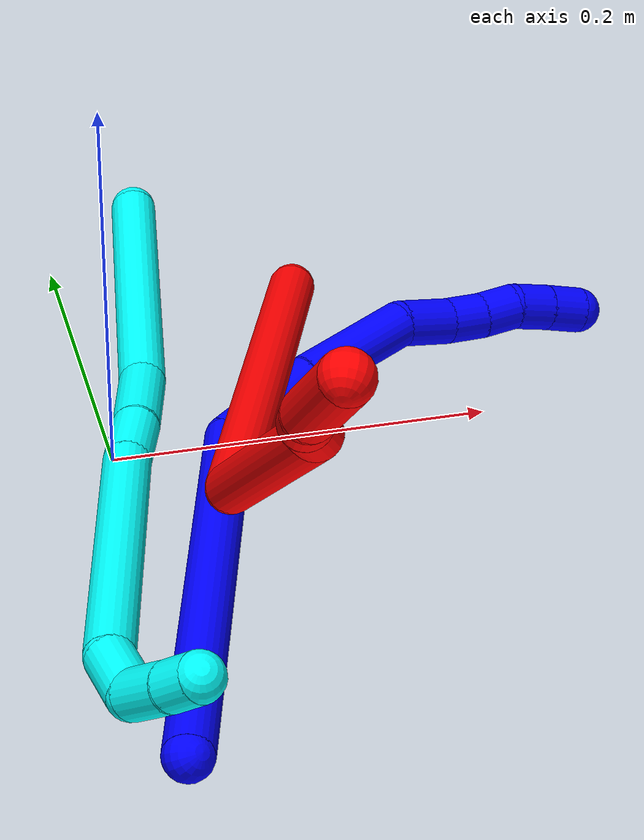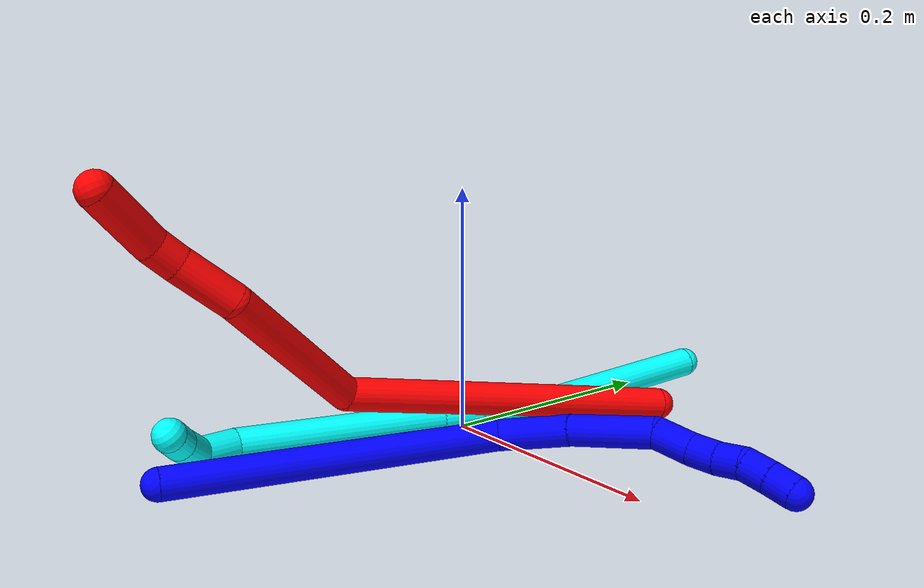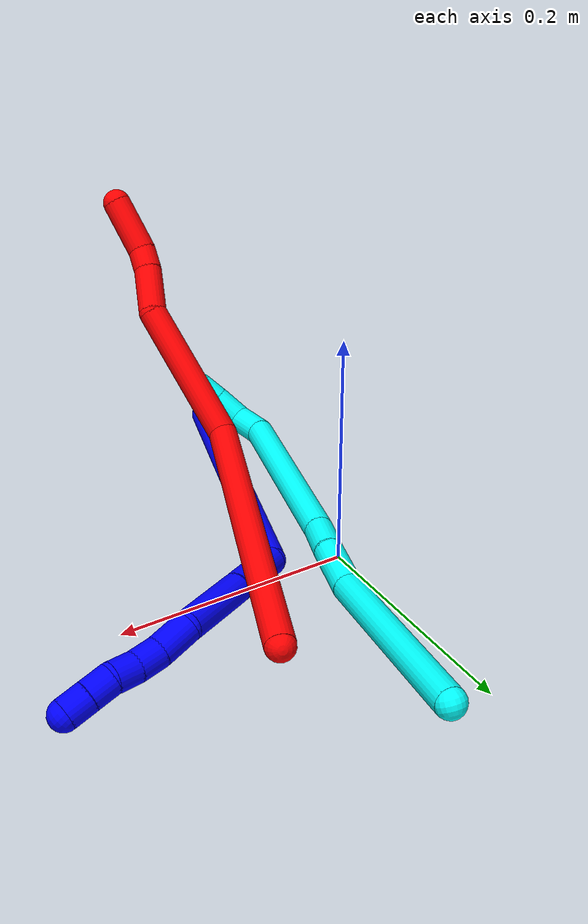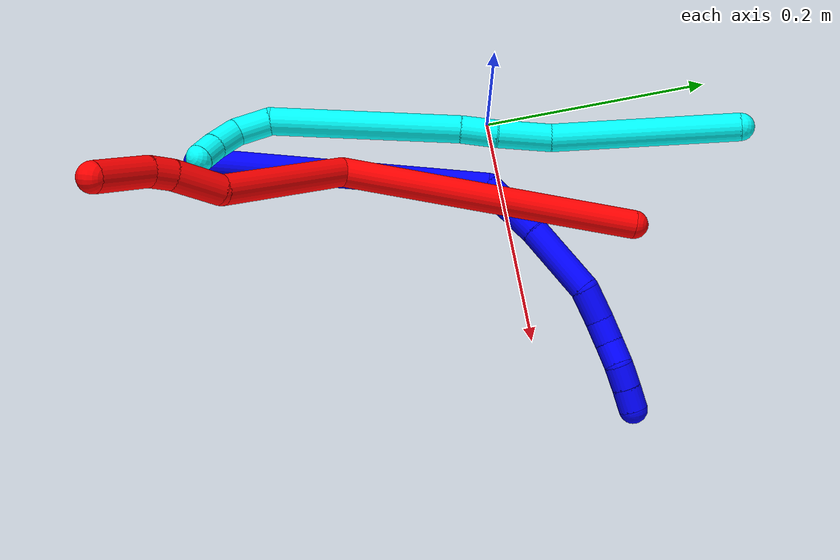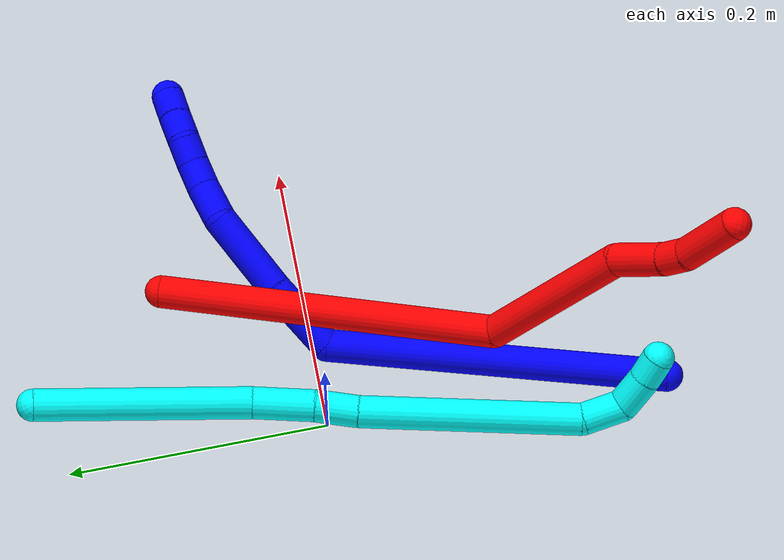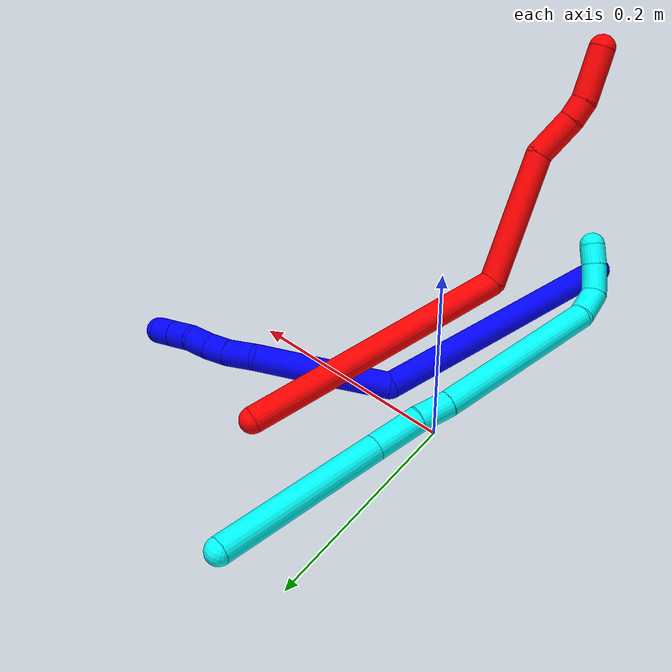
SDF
<sdf version="1.7">
 <world name="default">
  <plugin name="TubeGeneratorPlugin" filename="libtube_generator_plugin.so"/>
  <model name="photoneo_s_sensor">
   <static>1</static>
   <pose>0 0 2 1.57079 1.57079 3.14159</pose>
   <link name="link">
    <inertial><mass>0.1</mass></inertial>
    <sensor name="sensor" type="depth">
     <update_rate>30</update_rate>
     <camera>
      <horizontal_fov>1.22</horizontal_fov>
      <image><width>1920</width><height>1200</height><format>B8G8R8</format></image>
      <clip><near>0.1</near><far>4</far></clip>
      <depth_camera><output>points</output></depth_camera>
     </camera>
     <plugin name="camera_plugin" filename="libgazebo_ros_depth_camera.so">
      <baseline>0.2</baseline>
      <alwaysOn>1</alwaysOn>
      <updateRate>0.0</updateRate>
      <cameraName>camera_ir</cameraName>
      <imageTopicName>/camera/color/image_raw</imageTopicName>
      <cameraInfoTopicName>/camera/color/camera_info</cameraInfoTopicName>
      <depthImageTopicName>/camera/depth/image_raw</depthImageTopicName>
      <depthImageCameraInfoTopicName>/camera/depth/camera_info</depthImageCameraInfoTopicName>
      <pointCloudTopicName>/camera/depth/points</pointCloudTopicName>
      <frameName>fr_optical</frameName>
      <pointCloudCutoff>0.1</pointCloudCutoff>
      <pointCloudCutoffMax>2.0</pointCloudCutoffMax>
      <distortionK1>0</distortionK1>
      <distortionK2>0</distortionK2>
      <distortionK3>0</distortionK3>
      <distortionT1>0</distortionT1>
      <distortionT2>0</distortionT2>
      <CxPrime>0</CxPrime>
      <Cx>0</Cx>
      <Cy>0</Cy>
      <focalLength>0</focalLength>
      <hackBaseline>0</hackBaseline>
     </plugin>
    </sensor>
   </link>
  </model>
  <gravity>0 0 -9.8</gravity>
  <magnetic_field>6e-06 2.3e-05 -4.2e-05</magnetic_field>
  <atmosphere type="adiabatic"/>
  <physics name="default_physics" default="0" type="ode">
   <max_step_size>0.003</max_step_size>
   <real_time_factor>1</real_time_factor>
   <real_time_update_rate>1000</real_time_update_rate>
   <max_contacts>10000</max_contacts>
   <ode>
    <solver>
     <type>quick</type>
     <iters>100</iters>
     <sor>1.3</sor>
     <use_dynamic_moi_rescaling>0</use_dynamic_moi_rescaling>
    </solver>
    <constraints>
     <contact_max_correcting_vel>0</contact_max_correcting_vel>
     <contact_surface_layer>0.001</contact_surface_layer>
     <cfm>0</cfm>
     <erp>0.2</erp>
    </constraints>
   </ode>
  </physics>
  <scene><ambient>0.4 0.4 0.4 1</ambient><background>0.7 0.7 0.7 1</background><shadows>0</shadows></scene>
  <audio><device>default</device></audio>
  <spherical_coordinates>
   <surface_model>EARTH_WGS84</surface_model>
   <latitude_deg>0</latitude_deg>
   <longitude_deg>0</longitude_deg>
   <elevation>0</elevation>
   <heading_deg>0</heading_deg>
  </spherical_coordinates>
  <model name="bin">
   <static>1</static>
   <link name="bottom">
    <collision name="collision-bottom">
     <pose>0 0 -0.01 0 -0 0</pose>
     <geometry><box><size>0.8 0.6 0.02</size></box></geometry>
     <surface>
      <friction><ode><mu>100</mu><mu2>100</mu2></ode></friction>
      <contact><collide_bitmask>65535</collide_bitmask></contact>
     </surface>
    </collision>
   </link>
   <link name="west_wall">
    <collision name="collision-west_wall">
     <pose>-0.41 0 0.1 0 -0 0</pose>
     <geometry><box><size>0.02 0.6 0.2</size></box></geometry>
     <surface>
      <friction><ode><mu>100</mu><mu2>100</mu2></ode></friction>
      <contact><collide_bitmask>65535</collide_bitmask></contact>
     </surface>
    </collision>
   </link>
   <link name="east_wall">
    <collision name="collision-east_wall">
     <pose>0.41 0 0.1 0 -0 0</pose>
     <geometry><box><size>0.02 0.6 0.2</size></box></geometry>
     <surface>
      <friction><ode><mu>100</mu><mu2>100</mu2></ode></friction>
      <contact><collide_bitmask>65535</collide_bitmask></contact>
     </surface>
    </collision>
   </link>
   <link name="south_wall">
    <collision name="collision-south_wall">
     <pose>0 -0.31 0.1 0 -0 0</pose>
     <geometry><box><size>0.8 0.02 0.2</size></box></geometry>
     <surface>
      <friction><ode><mu>100</mu><mu2>100</mu2></ode></friction>
      <contact><collide_bitmask>65535</collide_bitmask></contact>
     </surface>
    </collision>
   </link>
   <link name="north_wall">
    <collision name="collision-north_wall">
     <pose>0 0.31 0.1 0 -0 0</pose>
     <geometry><box><size>0.8 0.02 0.2</size></box></geometry>
     <surface>
      <friction><ode><mu>100</mu><mu2>100</mu2></ode></friction>
      <contact><collide_bitmask>65535</collide_bitmask></contact>
     </surface>
    </collision>
   </link>
  </model>
  <model name="1">
   <static>0</static>
   <link name="1">
    <collision name="collision-cylinder-e_1_1_4">
     <pose>0.056398 0.094501 -0.069531 -2.20513 0.448091 -0.846653</pose>
     <geometry><cylinder><radius>0.0125</radius><length>0.260352</length></cylinder></geometry>
     <surface>
      <friction><ode><mu>1.16</mu><mu2>1.16</mu2><slip1>0</slip1><slip2>0</slip2></ode></friction>
      <contact><ode><kp>1e+06</kp><kd>1</kd><max_vel>0</max_vel><min_depth>0.001</min_depth></ode></contact>
     </surface>
    </collision>
    <visual name="visual-cylinder-e_1_1_4">
     <pose>0.056398 0.094501 -0.069531 -2.20513 0.448091 -0.846653</pose>
     <geometry><cylinder><radius>0.0125</radius><length>0.260352</length></cylinder></geometry>
     <material><ambient>0 0 1 1</ambient></material>
    </visual>
    <collision name="collision-cylinder-e_2_4_5">
     <pose>0.135926 0.207656 -0.135949 -1.40542 0.885354 -0.763584</pose>
     <geometry><cylinder><radius>0.0125</radius><length>0.059755</length></cylinder></geometry>
     <surface>
      <friction><ode><mu>1.16</mu><mu2>1.16</mu2><slip1>0</slip1><slip2>0</slip2></ode></friction>
      <contact><ode><kp>1e+06</kp><kd>1</kd><max_vel>0</max_vel><min_depth>0.001</min_depth></ode></contact>
     </surface>
    </collision>
    <visual name="visual-cylinder-e_2_4_5">
     <pose>0.135926 0.207656 -0.135949 -1.40542 0.885354 -0.763584</pose>
     <geometry><cylinder><radius>0.0125</radius><length>0.059755</length></cylinder></geometry>
     <material><ambient>0 0 1 1</ambient></material>
    </visual>
    <collision name="collision-cylinder-e_3_5_6">
     <pose>0.187062 0.244262 -0.128968 -1.35857 0.990458 -0.822533</pose>
     <geometry><cylinder><radius>0.0125</radius><length>0.066982</length></cylinder></geometry>
     <surface>
      <friction><ode><mu>1.16</mu><mu2>1.16</mu2><slip1>0</slip1><slip2>0</slip2></ode></friction>
      <contact><ode><kp>1e+06</kp><kd>1</kd><max_vel>0</max_vel><min_depth>0.001</min_depth></ode></contact>
     </surface>
    </collision>
    <visual name="visual-cylinder-e_3_5_6">
     <pose>0.187062 0.244262 -0.128968 -1.35857 0.990458 -0.822533</pose>
     <geometry><cylinder><radius>0.0125</radius><length>0.066982</length></cylinder></geometry>
     <material><ambient>0 0 1 1</ambient></material>
    </visual>
    <collision name="collision-cylinder-e_4_6_7">
     <pose>0.229752 0.264742 -0.123983 -1.15497 1.38471 -0.990817</pose>
     <geometry><cylinder><radius>0.0125</radius><length>0.029879</length></cylinder></geometry>
     <surface>
      <friction><ode><mu>1.16</mu><mu2>1.16</mu2><slip1>0</slip1><slip2>0</slip2></ode></friction>
      <contact><ode><kp>1e+06</kp><kd>1</kd><max_vel>0</max_vel><min_depth>0.001</min_depth></ode></contact>
     </surface>
    </collision>
    <visual name="visual-cylinder-e_4_6_7">
     <pose>0.229752 0.264742 -0.123983 -1.15497 1.38471 -0.990817</pose>
     <geometry><cylinder><radius>0.0125</radius><length>0.029879</length></cylinder></geometry>
     <material><ambient>0 0 1 1</ambient></material>
    </visual>
    <collision name="collision-cylinder-e_5_7_8">
     <pose>0.254665 0.26975 -0.120633 -0.837472 1.25545 -0.624755</pose>
     <geometry><cylinder><radius>0.0125</radius><length>0.021524</length></cylinder></geometry>
     <surface>
      <friction><ode><mu>1.16</mu><mu2>1.16</mu2><slip1>0</slip1><slip2>0</slip2></ode></friction>
      <contact><ode><kp>1e+06</kp><kd>1</kd><max_vel>0</max_vel><min_depth>0.001</min_depth></ode></contact>
     </surface>
    </collision>
    <visual name="visual-cylinder-e_5_7_8">
     <pose>0.254665 0.26975 -0.120633 -0.837472 1.25545 -0.624755</pose>
     <geometry><cylinder><radius>0.0125</radius><length>0.021524</length></cylinder></geometry>
     <material><ambient>0 0 1 1</ambient></material>
    </visual>
    <collision name="collision-cylinder-e_6_8_9">
     <pose>0.274023 0.275443 -0.115119 -0.77511 1.10473 -0.492968</pose>
     <geometry><cylinder><radius>0.0125</radius><length>0.020433</length></cylinder></geometry>
     <surface>
      <friction><ode><mu>1.16</mu><mu2>1.16</mu2><slip1>0</slip1><slip2>0</slip2></ode></friction>
      <contact><ode><kp>1e+06</kp><kd>1</kd><max_vel>0</max_vel><min_depth>0.001</min_depth></ode></contact>
     </surface>
    </collision>
    <visual name="visual-cylinder-e_6_8_9">
     <pose>0.274023 0.275443 -0.115119 -0.77511 1.10473 -0.492968</pose>
     <geometry><cylinder><radius>0.0125</radius><length>0.020433</length></cylinder></geometry>
     <material><ambient>0 0 1 1</ambient></material>
    </visual>
    <collision name="collision-cylinder-e_7_9_10">
     <pose>0.293365 0.279465 -0.110409 -0.515024 1.41134 -0.441466</pose>
     <geometry><cylinder><radius>0.0125</radius><length>0.020694</length></cylinder></geometry>
     <surface>
      <friction><ode><mu>1.16</mu><mu2>1.16</mu2><slip1>0</slip1><slip2>0</slip2></ode></friction>
      <contact><ode><kp>1e+06</kp><kd>1</kd><max_vel>0</max_vel><min_depth>0.001</min_depth></ode></contact>
     </surface>
    </collision>
    <visual name="visual-cylinder-e_7_9_10">
     <pose>0.293365 0.279465 -0.110409 -0.515024 1.41134 -0.441466</pose>
     <geometry><cylinder><radius>0.0125</radius><length>0.020694</length></cylinder></geometry>
     <material><ambient>0 0 1 1</ambient></material>
    </visual>
    <collision name="collision-cylinder-e_8_10_2">
     <pose>0.31367 0.280664 -0.107594 -0.274119 1.42904 -0.238144</pose>
     <geometry><cylinder><radius>0.0125</radius><length>0.020382</length></cylinder></geometry>
     <surface>
      <friction><ode><mu>1.16</mu><mu2>1.16</mu2><slip1>0</slip1><slip2>0</slip2></ode></friction>
      <contact><ode><kp>1e+06</kp><kd>1</kd><max_vel>0</max_vel><min_depth>0.001</min_depth></ode></contact>
     </surface>
    </collision>
    <visual name="visual-cylinder-e_8_10_2">
     <pose>0.31367 0.280664 -0.107594 -0.274119 1.42904 -0.238144</pose>
     <geometry><cylinder><radius>0.0125</radius><length>0.020382</length></cylinder></geometry>
     <material><ambient>0 0 1 1</ambient></material>
    </visual>
    <collision name="collision-sphere-2">
     <pose>0.323759 0.281054 -0.106208 0 -0 0</pose>
     <geometry><sphere><radius>0.0125</radius></sphere></geometry>
     <surface>
      <friction><ode><mu>1.16</mu><mu2>1.16</mu2><slip1>0</slip1><slip2>0</slip2></ode></friction>
      <contact><ode><kp>1e+06</kp><kd>1</kd><max_vel>0</max_vel><min_depth>0.001</min_depth></ode></contact>
     </surface>
    </collision>
    <visual name="visual-sphere-2">
     <pose>0.323759 0.281054 -0.106208 0 -0 0</pose>
     <geometry><sphere><radius>0.0125</radius></sphere></geometry>
     <material><ambient>0 0 1 1</ambient></material>
    </visual>
    <collision name="collision-sphere-10">
     <pose>0.303581 0.280274 -0.10898 0 -0 0</pose>
     <geometry><sphere><radius>0.0125</radius></sphere></geometry>
     <surface>
      <friction><ode><mu>1.16</mu><mu2>1.16</mu2><slip1>0</slip1><slip2>0</slip2></ode></friction>
      <contact><ode><kp>1e+06</kp><kd>1</kd><max_vel>0</max_vel><min_depth>0.001</min_depth></ode></contact>
     </surface>
    </collision>
    <visual name="visual-sphere-10">
     <pose>0.303581 0.280274 -0.10898 0 -0 0</pose>
     <geometry><sphere><radius>0.0125</radius></sphere></geometry>
     <material><ambient>0 0 1 1</ambient></material>
    </visual>
    <collision name="collision-sphere-9">
     <pose>0.28315 0.278656 -0.111839 0 -0 0</pose>
     <geometry><sphere><radius>0.0125</radius></sphere></geometry>
     <surface>
      <friction><ode><mu>1.16</mu><mu2>1.16</mu2><slip1>0</slip1><slip2>0</slip2></ode></friction>
      <contact><ode><kp>1e+06</kp><kd>1</kd><max_vel>0</max_vel><min_depth>0.001</min_depth></ode></contact>
     </surface>
    </collision>
    <visual name="visual-sphere-9">
     <pose>0.28315 0.278656 -0.111839 0 -0 0</pose>
     <geometry><sphere><radius>0.0125</radius></sphere></geometry>
     <material><ambient>0 0 1 1</ambient></material>
    </visual>
    <collision name="collision-sphere-4">
     <pose>0.112796 0.189001 -0.139063 0 -0 0</pose>
     <geometry><sphere><radius>0.0125</radius></sphere></geometry>
     <surface>
      <friction><ode><mu>1.16</mu><mu2>1.16</mu2><slip1>0</slip1><slip2>0</slip2></ode></friction>
      <contact><ode><kp>1e+06</kp><kd>1</kd><max_vel>0</max_vel><min_depth>0.001</min_depth></ode></contact>
     </surface>
    </collision>
    <visual name="visual-sphere-4">
     <pose>0.112796 0.189001 -0.139063 0 -0 0</pose>
     <geometry><sphere><radius>0.0125</radius></sphere></geometry>
     <material><ambient>0 0 1 1</ambient></material>
    </visual>
    <collision name="collision-sphere-1">
     <geometry><sphere><radius>0.0125</radius></sphere></geometry>
     <surface>
      <friction><ode><mu>1.16</mu><mu2>1.16</mu2><slip1>0</slip1><slip2>0</slip2></ode></friction>
      <contact><ode><kp>1e+06</kp><kd>1</kd><max_vel>0</max_vel><min_depth>0.001</min_depth></ode></contact>
     </surface>
    </collision>
    <visual name="visual-sphere-1">
     <geometry><sphere><radius>0.0125</radius></sphere></geometry>
     <material><ambient>0 0 1 1</ambient></material>
    </visual>
    <collision name="collision-sphere-8">
     <pose>0.264896 0.27223 -0.118398 0 -0 0</pose>
     <geometry><sphere><radius>0.0125</radius></sphere></geometry>
     <surface>
      <friction><ode><mu>1.16</mu><mu2>1.16</mu2><slip1>0</slip1><slip2>0</slip2></ode></friction>
      <contact><ode><kp>1e+06</kp><kd>1</kd><max_vel>0</max_vel><min_depth>0.001</min_depth></ode></contact>
     </surface>
    </collision>
    <visual name="visual-sphere-8">
     <pose>0.264896 0.27223 -0.118398 0 -0 0</pose>
     <geometry><sphere><radius>0.0125</radius></sphere></geometry>
     <material><ambient>0 0 1 1</ambient></material>
    </visual>
    <collision name="collision-sphere-5">
     <pose>0.159055 0.226311 -0.132836 0 -0 0</pose>
     <geometry><sphere><radius>0.0125</radius></sphere></geometry>
     <surface>
      <friction><ode><mu>1.16</mu><mu2>1.16</mu2><slip1>0</slip1><slip2>0</slip2></ode></friction>
      <contact><ode><kp>1e+06</kp><kd>1</kd><max_vel>0</max_vel><min_depth>0.001</min_depth></ode></contact>
     </surface>
    </collision>
    <visual name="visual-sphere-5">
     <pose>0.159055 0.226311 -0.132836 0 -0 0</pose>
     <geometry><sphere><radius>0.0125</radius></sphere></geometry>
     <material><ambient>0 0 1 1</ambient></material>
    </visual>
    <collision name="collision-sphere-6">
     <pose>0.21507 0.262213 -0.1251 0 -0 0</pose>
     <geometry><sphere><radius>0.0125</radius></sphere></geometry>
     <surface>
      <friction><ode><mu>1.16</mu><mu2>1.16</mu2><slip1>0</slip1><slip2>0</slip2></ode></friction>
      <contact><ode><kp>1e+06</kp><kd>1</kd><max_vel>0</max_vel><min_depth>0.001</min_depth></ode></contact>
     </surface>
    </collision>
    <visual name="visual-sphere-6">
     <pose>0.21507 0.262213 -0.1251 0 -0 0</pose>
     <geometry><sphere><radius>0.0125</radius></sphere></geometry>
     <material><ambient>0 0 1 1</ambient></material>
    </visual>
    <collision name="collision-sphere-7">
     <pose>0.244433 0.26727 -0.122867 0 -0 0</pose>
     <geometry><sphere><radius>0.0125</radius></sphere></geometry>
     <surface>
      <friction><ode><mu>1.16</mu><mu2>1.16</mu2><slip1>0</slip1><slip2>0</slip2></ode></friction>
      <contact><ode><kp>1e+06</kp><kd>1</kd><max_vel>0</max_vel><min_depth>0.001</min_depth></ode></contact>
     </surface>
    </collision>
    <visual name="visual-sphere-7">
     <pose>0.244433 0.26727 -0.122867 0 -0 0</pose>
     <geometry><sphere><radius>0.0125</radius></sphere></geometry>
     <material><ambient>0 0 1 1</ambient></material>
    </visual>
    <inertial>
     <pose>0.131489 0.168442 -0.095991 0 -0 0</pose>
     <mass>0.5</mass>
     <inertia>
      <ixx>-9e-05</ixx>
      <ixy>0</ixy>
      <ixz>0</ixz>
      <iyy>-0.00115</iyy>
      <iyz>0</iyz>
      <izz>-0.001802</izz>
     </inertia>
    </inertial>
   </link>
   <pose>-0.01283 -0.261275 0.011499 0.842156 0.405457 0.210361</pose>
  </model>
  <model name="2">
   <static>0</static>
   <link name="2">
    <collision name="collision-cylinder-e_1_1_4">
     <pose>0.024209 -0.05861 0.11213 0.48164 0.189058 0.04656</pose>
     <geometry><cylinder><radius>0.0125</radius><length>0.257639</length></cylinder></geometry>
     <surface>
      <friction><ode><mu>1.16</mu><mu2>1.16</mu2><slip1>0</slip1><slip2>0</slip2></ode></friction>
      <contact><ode><kp>1e+06</kp><kd>1</kd><max_vel>0</max_vel><min_depth>0.001</min_depth></ode></contact>
     </surface>
    </collision>
    <visual name="visual-cylinder-e_1_1_4">
     <pose>0.024209 -0.05861 0.11213 0.48164 0.189058 0.04656</pose>
     <geometry><cylinder><radius>0.0125</radius><length>0.257639</length></cylinder></geometry>
     <material><ambient>1 0 0 1</ambient></material>
    </visual>
    <collision name="collision-cylinder-e_2_4_5">
     <pose>0.048841 -0.177219 0.245796 1.22618 0.006621 0.004658</pose>
     <geometry><cylinder><radius>0.0125</radius><length>0.127495</length></cylinder></geometry>
     <surface>
      <friction><ode><mu>1.16</mu><mu2>1.16</mu2><slip1>0</slip1><slip2>0</slip2></ode></friction>
      <contact><ode><kp>1e+06</kp><kd>1</kd><max_vel>0</max_vel><min_depth>0.001</min_depth></ode></contact>
     </surface>
    </collision>
    <visual name="visual-cylinder-e_2_4_5">
     <pose>0.048841 -0.177219 0.245796 1.22618 0.006621 0.004658</pose>
     <geometry><cylinder><radius>0.0125</radius><length>0.127495</length></cylinder></geometry>
     <material><ambient>1 0 0 1</ambient></material>
    </visual>
    <collision name="collision-cylinder-e_3_5_6">
     <pose>0.057289 -0.254279 0.278177 1.00458 0.377914 0.209318</pose>
     <geometry><cylinder><radius>0.0125</radius><length>0.043504</length></cylinder></geometry>
     <surface>
      <friction><ode><mu>1.16</mu><mu2>1.16</mu2><slip1>0</slip1><slip2>0</slip2></ode></friction>
      <contact><ode><kp>1e+06</kp><kd>1</kd><max_vel>0</max_vel><min_depth>0.001</min_depth></ode></contact>
     </surface>
    </collision>
    <visual name="visual-cylinder-e_3_5_6">
     <pose>0.057289 -0.254279 0.278177 1.00458 0.377914 0.209318</pose>
     <geometry><cylinder><radius>0.0125</radius><length>0.043504</length></cylinder></geometry>
     <material><ambient>1 0 0 1</ambient></material>
    </visual>
    <collision name="collision-cylinder-e_4_6_7">
     <pose>0.067689 -0.280259 0.293517 1.10395 0.233374 0.144125</pose>
     <geometry><cylinder><radius>0.0125</radius><length>0.02053</length></cylinder></geometry>
     <surface>
      <friction><ode><mu>1.16</mu><mu2>1.16</mu2><slip1>0</slip1><slip2>0</slip2></ode></friction>
      <contact><ode><kp>1e+06</kp><kd>1</kd><max_vel>0</max_vel><min_depth>0.001</min_depth></ode></contact>
     </surface>
    </collision>
    <visual name="visual-cylinder-e_4_6_7">
     <pose>0.067689 -0.280259 0.293517 1.10395 0.233374 0.144125</pose>
     <geometry><cylinder><radius>0.0125</radius><length>0.02053</length></cylinder></geometry>
     <material><ambient>1 0 0 1</ambient></material>
    </visual>
    <collision name="collision-cylinder-e_5_7_2">
     <pose>0.0712 -0.313637 0.304824 1.29918 0.044758 0.033998</pose>
     <geometry><cylinder><radius>0.0125</radius><length>0.050832</length></cylinder></geometry>
     <surface>
      <friction><ode><mu>1.16</mu><mu2>1.16</mu2><slip1>0</slip1><slip2>0</slip2></ode></friction>
      <contact><ode><kp>1e+06</kp><kd>1</kd><max_vel>0</max_vel><min_depth>0.001</min_depth></ode></contact>
     </surface>
    </collision>
    <visual name="visual-cylinder-e_5_7_2">
     <pose>0.0712 -0.313637 0.304824 1.29918 0.044758 0.033998</pose>
     <geometry><cylinder><radius>0.0125</radius><length>0.050832</length></cylinder></geometry>
     <material><ambient>1 0 0 1</ambient></material>
    </visual>
    <collision name="collision-sphere-2">
     <pose>0.072337 -0.338096 0.311636 0 -0 0</pose>
     <geometry><sphere><radius>0.0125</radius></sphere></geometry>
     <surface>
      <friction><ode><mu>1.16</mu><mu2>1.16</mu2><slip1>0</slip1><slip2>0</slip2></ode></friction>
      <contact><ode><kp>1e+06</kp><kd>1</kd><max_vel>0</max_vel><min_depth>0.001</min_depth></ode></contact>
     </surface>
    </collision>
    <visual name="visual-sphere-2">
     <pose>0.072337 -0.338096 0.311636 0 -0 0</pose>
     <geometry><sphere><radius>0.0125</radius></sphere></geometry>
     <material><ambient>1 0 0 1</ambient></material>
    </visual>
    <collision name="collision-sphere-7">
     <pose>0.070063 -0.289177 0.298012 0 -0 0</pose>
     <geometry><sphere><radius>0.0125</radius></sphere></geometry>
     <surface>
      <friction><ode><mu>1.16</mu><mu2>1.16</mu2><slip1>0</slip1><slip2>0</slip2></ode></friction>
      <contact><ode><kp>1e+06</kp><kd>1</kd><max_vel>0</max_vel><min_depth>0.001</min_depth></ode></contact>
     </surface>
    </collision>
    <visual name="visual-sphere-7">
     <pose>0.070063 -0.289177 0.298012 0 -0 0</pose>
     <geometry><sphere><radius>0.0125</radius></sphere></geometry>
     <material><ambient>1 0 0 1</ambient></material>
    </visual>
    <collision name="collision-sphere-6">
     <pose>0.065315 -0.271341 0.289022 0 -0 0</pose>
     <geometry><sphere><radius>0.0125</radius></sphere></geometry>
     <surface>
      <friction><ode><mu>1.16</mu><mu2>1.16</mu2><slip1>0</slip1><slip2>0</slip2></ode></friction>
      <contact><ode><kp>1e+06</kp><kd>1</kd><max_vel>0</max_vel><min_depth>0.001</min_depth></ode></contact>
     </surface>
    </collision>
    <visual name="visual-sphere-6">
     <pose>0.065315 -0.271341 0.289022 0 -0 0</pose>
     <geometry><sphere><radius>0.0125</radius></sphere></geometry>
     <material><ambient>1 0 0 1</ambient></material>
    </visual>
    <collision name="collision-sphere-5">
     <pose>0.049263 -0.237217 0.267331 0 -0 0</pose>
     <geometry><sphere><radius>0.0125</radius></sphere></geometry>
     <surface>
      <friction><ode><mu>1.16</mu><mu2>1.16</mu2><slip1>0</slip1><slip2>0</slip2></ode></friction>
      <contact><ode><kp>1e+06</kp><kd>1</kd><max_vel>0</max_vel><min_depth>0.001</min_depth></ode></contact>
     </surface>
    </collision>
    <visual name="visual-sphere-5">
     <pose>0.049263 -0.237217 0.267331 0 -0 0</pose>
     <geometry><sphere><radius>0.0125</radius></sphere></geometry>
     <material><ambient>1 0 0 1</ambient></material>
    </visual>
    <collision name="collision-sphere-1">
     <geometry><sphere><radius>0.0125</radius></sphere></geometry>
     <surface>
      <friction><ode><mu>1.16</mu><mu2>1.16</mu2><slip1>0</slip1><slip2>0</slip2></ode></friction>
      <contact><ode><kp>1e+06</kp><kd>1</kd><max_vel>0</max_vel><min_depth>0.001</min_depth></ode></contact>
     </surface>
    </collision>
    <visual name="visual-sphere-1">
     <geometry><sphere><radius>0.0125</radius></sphere></geometry>
     <material><ambient>1 0 0 1</ambient></material>
    </visual>
    <collision name="collision-sphere-4">
     <pose>0.048419 -0.11722 0.22426 0 -0 0</pose>
     <geometry><sphere><radius>0.0125</radius></sphere></geometry>
     <surface>
      <friction><ode><mu>1.16</mu><mu2>1.16</mu2><slip1>0</slip1><slip2>0</slip2></ode></friction>
      <contact><ode><kp>1e+06</kp><kd>1</kd><max_vel>0</max_vel><min_depth>0.001</min_depth></ode></contact>
     </surface>
    </collision>
    <visual name="visual-sphere-4">
     <pose>0.048419 -0.11722 0.22426 0 -0 0</pose>
     <geometry><sphere><radius>0.0125</radius></sphere></geometry>
     <material><ambient>1 0 0 1</ambient></material>
    </visual>
    <inertial>
     <pose>0.039931 -0.140907 0.187699 0 -0 0</pose>
     <mass>0.5</mass>
     <inertia>
      <ixx>0.001682</ixx>
      <ixy>0</ixy>
      <ixz>0</ixz>
      <iyy>0.001388</iyy>
      <iyz>0</iyz>
      <izz>0.00059</izz>
     </inertia>
    </inertial>
   </link>
   <pose>0.12051 0.105439 0.029363 -1.9851 -0.410753 2.94608</pose>
  </model>
  <model name="3">
   <static>0</static>
   <link name="3">
    <collision name="collision-cylinder-e_1_1_4">
     <pose>-0.005333 -0.074121 -0.038051 2.04508 -0.063919 -0.104604</pose>
     <geometry><cylinder><radius>0.0125</radius><length>0.166975</length></cylinder></geometry>
     <surface>
      <friction><ode><mu>1.16</mu><mu2>1.16</mu2><slip1>0</slip1><slip2>0</slip2></ode></friction>
      <contact><ode><kp>1e+06</kp><kd>1</kd><max_vel>0</max_vel><min_depth>0.001</min_depth></ode></contact>
     </surface>
    </collision>
    <visual name="visual-cylinder-e_1_1_4">
     <pose>-0.005333 -0.074121 -0.038051 2.04508 -0.063919 -0.104604</pose>
     <geometry><cylinder><radius>0.0125</radius><length>0.166975</length></cylinder></geometry>
     <material><ambient>0.003922 1 0.996078 1</ambient></material>
    </visual>
    <collision name="collision-cylinder-e_2_4_5">
     <pose>-0.009588 -0.167799 -0.090163 2.1941 0.044689 0.087126</pose>
     <geometry><cylinder><radius>0.0125</radius><length>0.048224</length></cylinder></geometry>
     <surface>
      <friction><ode><mu>1.16</mu><mu2>1.16</mu2><slip1>0</slip1><slip2>0</slip2></ode></friction>
      <contact><ode><kp>1e+06</kp><kd>1</kd><max_vel>0</max_vel><min_depth>0.001</min_depth></ode></contact>
     </surface>
    </collision>
    <visual name="visual-cylinder-e_2_4_5">
     <pose>-0.009588 -0.167799 -0.090163 2.1941 0.044689 0.087126</pose>
     <geometry><cylinder><radius>0.0125</radius><length>0.048224</length></cylinder></geometry>
     <material><ambient>0.003922 1 0.996078 1</ambient></material>
    </visual>
    <collision name="collision-cylinder-e_3_5_6">
     <pose>-0.006697 -0.201459 -0.112656 2.10976 0.109995 0.193533</pose>
     <geometry><cylinder><radius>0.0125</radius><length>0.033061</length></cylinder></geometry>
     <surface>
      <friction><ode><mu>1.16</mu><mu2>1.16</mu2><slip1>0</slip1><slip2>0</slip2></ode></friction>
      <contact><ode><kp>1e+06</kp><kd>1</kd><max_vel>0</max_vel><min_depth>0.001</min_depth></ode></contact>
     </surface>
    </collision>
    <visual name="visual-cylinder-e_3_5_6">
     <pose>-0.006697 -0.201459 -0.112656 2.10976 0.109995 0.193533</pose>
     <geometry><cylinder><radius>0.0125</radius><length>0.033061</length></cylinder></geometry>
     <material><ambient>0.003922 1 0.996078 1</ambient></material>
    </visual>
    <collision name="collision-cylinder-e_4_6_7">
     <pose>-0.003223 -0.286321 -0.168348 2.15963 0.019497 0.036464</pose>
     <geometry><cylinder><radius>0.0125</radius><length>0.170215</length></cylinder></geometry>
     <surface>
      <friction><ode><mu>1.16</mu><mu2>1.16</mu2><slip1>0</slip1><slip2>0</slip2></ode></friction>
      <contact><ode><kp>1e+06</kp><kd>1</kd><max_vel>0</max_vel><min_depth>0.001</min_depth></ode></contact>
     </surface>
    </collision>
    <visual name="visual-cylinder-e_4_6_7">
     <pose>-0.003223 -0.286321 -0.168348 2.15963 0.019497 0.036464</pose>
     <geometry><cylinder><radius>0.0125</radius><length>0.170215</length></cylinder></geometry>
     <material><ambient>0.003922 1 0.996078 1</ambient></material>
    </visual>
    <collision name="collision-cylinder-e_5_7_8">
     <pose>-0.007047 -0.369122 -0.224695 2.21744 -0.348648 -0.679773</pose>
     <geometry><cylinder><radius>0.0125</radius><length>0.0321</length></cylinder></geometry>
     <surface>
      <friction><ode><mu>1.16</mu><mu2>1.16</mu2><slip1>0</slip1><slip2>0</slip2></ode></friction>
      <contact><ode><kp>1e+06</kp><kd>1</kd><max_vel>0</max_vel><min_depth>0.001</min_depth></ode></contact>
     </surface>
    </collision>
    <visual name="visual-cylinder-e_5_7_8">
     <pose>-0.007047 -0.369122 -0.224695 2.21744 -0.348648 -0.679773</pose>
     <geometry><cylinder><radius>0.0125</radius><length>0.0321</length></cylinder></geometry>
     <material><ambient>0.003922 1 0.996078 1</ambient></material>
    </visual>
    <collision name="collision-cylinder-e_6_8_9">
     <pose>-0.020555 -0.38294 -0.245828 2.99491 -0.582787 -2.66112</pose>
     <geometry><cylinder><radius>0.0125</radius><length>0.029163</length></cylinder></geometry>
     <surface>
      <friction><ode><mu>1.16</mu><mu2>1.16</mu2><slip1>0</slip1><slip2>0</slip2></ode></friction>
      <contact><ode><kp>1e+06</kp><kd>1</kd><max_vel>0</max_vel><min_depth>0.001</min_depth></ode></contact>
     </surface>
    </collision>
    <visual name="visual-cylinder-e_6_8_9">
     <pose>-0.020555 -0.38294 -0.245828 2.99491 -0.582787 -2.66112</pose>
     <geometry><cylinder><radius>0.0125</radius><length>0.029163</length></cylinder></geometry>
     <material><ambient>0.003922 1 0.996078 1</ambient></material>
    </visual>
    <collision name="collision-cylinder-e_7_9_2">
     <pose>-0.034616 -0.384989 -0.266003 3.10844 -0.638304 -3.04134</pose>
     <geometry><cylinder><radius>0.0125</radius><length>0.020262</length></cylinder></geometry>
     <surface>
      <friction><ode><mu>1.16</mu><mu2>1.16</mu2><slip1>0</slip1><slip2>0</slip2></ode></friction>
      <contact><ode><kp>1e+06</kp><kd>1</kd><max_vel>0</max_vel><min_depth>0.001</min_depth></ode></contact>
     </surface>
    </collision>
    <visual name="visual-cylinder-e_7_9_2">
     <pose>-0.034616 -0.384989 -0.266003 3.10844 -0.638304 -3.04134</pose>
     <geometry><cylinder><radius>0.0125</radius><length>0.020262</length></cylinder></geometry>
     <material><ambient>0.003922 1 0.996078 1</ambient></material>
    </visual>
    <collision name="collision-sphere-2">
     <pose>-0.040653 -0.385259 -0.274135 0 -0 0</pose>
     <geometry><sphere><radius>0.0125</radius></sphere></geometry>
     <surface>
      <friction><ode><mu>1.16</mu><mu2>1.16</mu2><slip1>0</slip1><slip2>0</slip2></ode></friction>
      <contact><ode><kp>1e+06</kp><kd>1</kd><max_vel>0</max_vel><min_depth>0.001</min_depth></ode></contact>
     </surface>
    </collision>
    <visual name="visual-sphere-2">
     <pose>-0.040653 -0.385259 -0.274135 0 -0 0</pose>
     <geometry><sphere><radius>0.0125</radius></sphere></geometry>
     <material><ambient>0.003922 1 0.996078 1</ambient></material>
    </visual>
    <collision name="collision-sphere-9">
     <pose>-0.02858 -0.384719 -0.257872 0 -0 0</pose>
     <geometry><sphere><radius>0.0125</radius></sphere></geometry>
     <surface>
      <friction><ode><mu>1.16</mu><mu2>1.16</mu2><slip1>0</slip1><slip2>0</slip2></ode></friction>
      <contact><ode><kp>1e+06</kp><kd>1</kd><max_vel>0</max_vel><min_depth>0.001</min_depth></ode></contact>
     </surface>
    </collision>
    <visual name="visual-sphere-9">
     <pose>-0.02858 -0.384719 -0.257872 0 -0 0</pose>
     <geometry><sphere><radius>0.0125</radius></sphere></geometry>
     <material><ambient>0.003922 1 0.996078 1</ambient></material>
    </visual>
    <collision name="collision-sphere-4">
     <pose>-0.010666 -0.148241 -0.076102 0 -0 0</pose>
     <geometry><sphere><radius>0.0125</radius></sphere></geometry>
     <surface>
      <friction><ode><mu>1.16</mu><mu2>1.16</mu2><slip1>0</slip1><slip2>0</slip2></ode></friction>
      <contact><ode><kp>1e+06</kp><kd>1</kd><max_vel>0</max_vel><min_depth>0.001</min_depth></ode></contact>
     </surface>
    </collision>
    <visual name="visual-sphere-4">
     <pose>-0.010666 -0.148241 -0.076102 0 -0 0</pose>
     <geometry><sphere><radius>0.0125</radius></sphere></geometry>
     <material><ambient>0.003922 1 0.996078 1</ambient></material>
    </visual>
    <collision name="collision-sphere-1">
     <geometry><sphere><radius>0.0125</radius></sphere></geometry>
     <surface>
      <friction><ode><mu>1.16</mu><mu2>1.16</mu2><slip1>0</slip1><slip2>0</slip2></ode></friction>
      <contact><ode><kp>1e+06</kp><kd>1</kd><max_vel>0</max_vel><min_depth>0.001</min_depth></ode></contact>
     </surface>
    </collision>
    <visual name="visual-sphere-1">
     <geometry><sphere><radius>0.0125</radius></sphere></geometry>
     <material><ambient>0.003922 1 0.996078 1</ambient></material>
    </visual>
    <collision name="collision-sphere-8">
     <pose>-0.01253 -0.381161 -0.233784 0 -0 0</pose>
     <geometry><sphere><radius>0.0125</radius></sphere></geometry>
     <surface>
      <friction><ode><mu>1.16</mu><mu2>1.16</mu2><slip1>0</slip1><slip2>0</slip2></ode></friction>
      <contact><ode><kp>1e+06</kp><kd>1</kd><max_vel>0</max_vel><min_depth>0.001</min_depth></ode></contact>
     </surface>
    </collision>
    <visual name="visual-sphere-8">
     <pose>-0.01253 -0.381161 -0.233784 0 -0 0</pose>
     <geometry><sphere><radius>0.0125</radius></sphere></geometry>
     <material><ambient>0.003922 1 0.996078 1</ambient></material>
    </visual>
    <collision name="collision-sphere-5">
     <pose>-0.008511 -0.187358 -0.104223 0 -0 0</pose>
     <geometry><sphere><radius>0.0125</radius></sphere></geometry>
     <surface>
      <friction><ode><mu>1.16</mu><mu2>1.16</mu2><slip1>0</slip1><slip2>0</slip2></ode></friction>
      <contact><ode><kp>1e+06</kp><kd>1</kd><max_vel>0</max_vel><min_depth>0.001</min_depth></ode></contact>
     </surface>
    </collision>
    <visual name="visual-sphere-5">
     <pose>-0.008511 -0.187358 -0.104223 0 -0 0</pose>
     <geometry><sphere><radius>0.0125</radius></sphere></geometry>
     <material><ambient>0.003922 1 0.996078 1</ambient></material>
    </visual>
    <collision name="collision-sphere-6">
     <pose>-0.004882 -0.21556 -0.121089 0 -0 0</pose>
     <geometry><sphere><radius>0.0125</radius></sphere></geometry>
     <surface>
      <friction><ode><mu>1.16</mu><mu2>1.16</mu2><slip1>0</slip1><slip2>0</slip2></ode></friction>
      <contact><ode><kp>1e+06</kp><kd>1</kd><max_vel>0</max_vel><min_depth>0.001</min_depth></ode></contact>
     </surface>
    </collision>
    <visual name="visual-sphere-6">
     <pose>-0.004882 -0.21556 -0.121089 0 -0 0</pose>
     <geometry><sphere><radius>0.0125</radius></sphere></geometry>
     <material><ambient>0.003922 1 0.996078 1</ambient></material>
    </visual>
    <collision name="collision-sphere-7">
     <pose>-0.001564 -0.357083 -0.215607 0 -0 0</pose>
     <geometry><sphere><radius>0.0125</radius></sphere></geometry>
     <surface>
      <friction><ode><mu>1.16</mu><mu2>1.16</mu2><slip1>0</slip1><slip2>0</slip2></ode></friction>
      <contact><ode><kp>1e+06</kp><kd>1</kd><max_vel>0</max_vel><min_depth>0.001</min_depth></ode></contact>
     </surface>
    </collision>
    <visual name="visual-sphere-7">
     <pose>-0.001564 -0.357083 -0.215607 0 -0 0</pose>
     <geometry><sphere><radius>0.0125</radius></sphere></geometry>
     <material><ambient>0.003922 1 0.996078 1</ambient></material>
    </visual>
    <inertial>
     <pose>-0.0073 -0.213364 -0.125706 0 -0 0</pose>
     <mass>0.5</mass>
     <inertia>
      <ixx>0.000793</ixx>
      <ixy>0</ixy>
      <ixz>0</ixz>
      <iyy>-0.000472</iyy>
      <iyz>0</iyz>
      <izz>0.000712</izz>
     </inertia>
    </inertial>
   </link>
   <pose>0.052382 0.216933 0.029053 2.57274 -0.106942 2.92861</pose>
  </model>
 </world>
</sdf>
